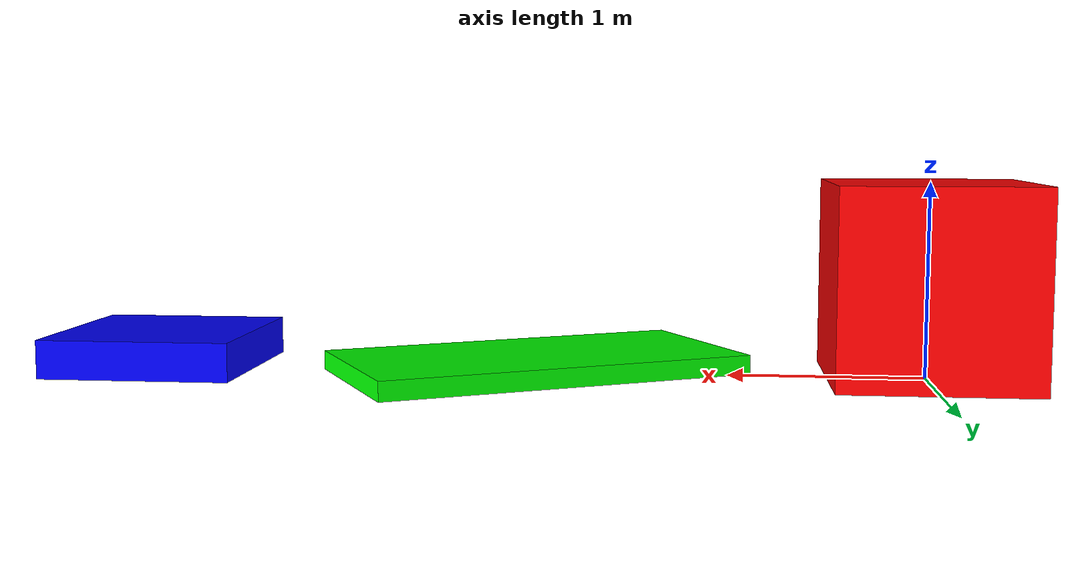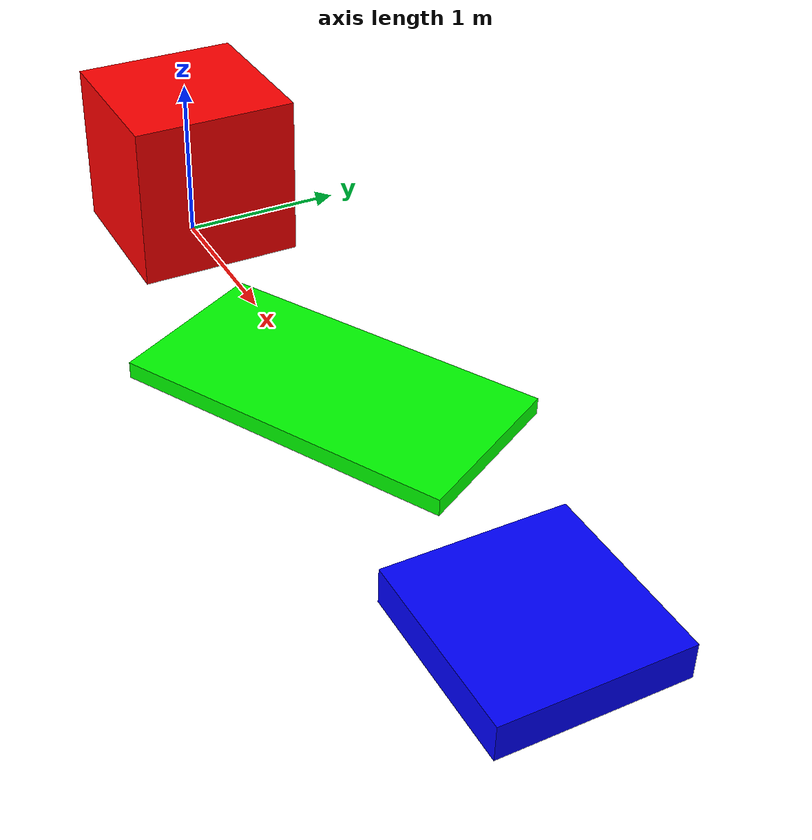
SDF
<?xml version="1.0" ?>
<sdf version="1.6">
  <model name="example_model">
    <link name="base_link">

      <!-- 长方体 -->
      <collision name="box_collision">
        <geometry>
          <box>
            <size>1 1 1</size> <!-- 长方体的尺寸 -->
          </box>
        </geometry>
        <pose>0 0 0.5 0 0 0</pose>
      </collision>
      <visual name="box_visual">
        <geometry>
          <box>
            <size>1 1 1</size>
          </box>
        </geometry>
        <pose>0 0 0.5 0 0 0</pose>
        <material>
          <ambient>1 0 0 1</ambient> <!-- 红色 -->
        </material>
      </visual>

      <!-- 斜坡 -->
      <collision name="ramp_collision">
        <geometry>
          <box>
            <size>2 1 0.1</size> <!-- 斜坡的尺寸 -->
          </box>
        </geometry>
        <pose>2 0 0.05 0 0 0.5</pose> <!-- 设置斜坡的旋转以形成斜面 -->
      </collision>
      <visual name="ramp_visual">
        <geometry>
          <box>
            <size>2 1 0.1</size>
          </box>
        </geometry>
        <pose>2 0 0.05 0 0 0.5</pose>
        <material>
          <ambient>0 1 0 1</ambient> <!-- 绿色 -->
        </material>
      </visual>

      <!-- 台阶 -->
      <collision name="step_collision">
        <geometry>
          <box>
            <size>1 1 0.2</size> <!-- 台阶的尺寸 -->
          </box>
        </geometry>
        <pose>4 0 0.1 0 0 0</pose>
      </collision>
      <visual name="step_visual">
        <geometry>
          <box>
            <size>1 1 0.2</size>
          </box>
        </geometry>
        <pose>4 0 0.1 0 0 0</pose>
        <material>
          <ambient>0 0 1 1</ambient> <!-- 蓝色 -->
        </material>
      </visual>

    </link>
  </model>
</sdf>
